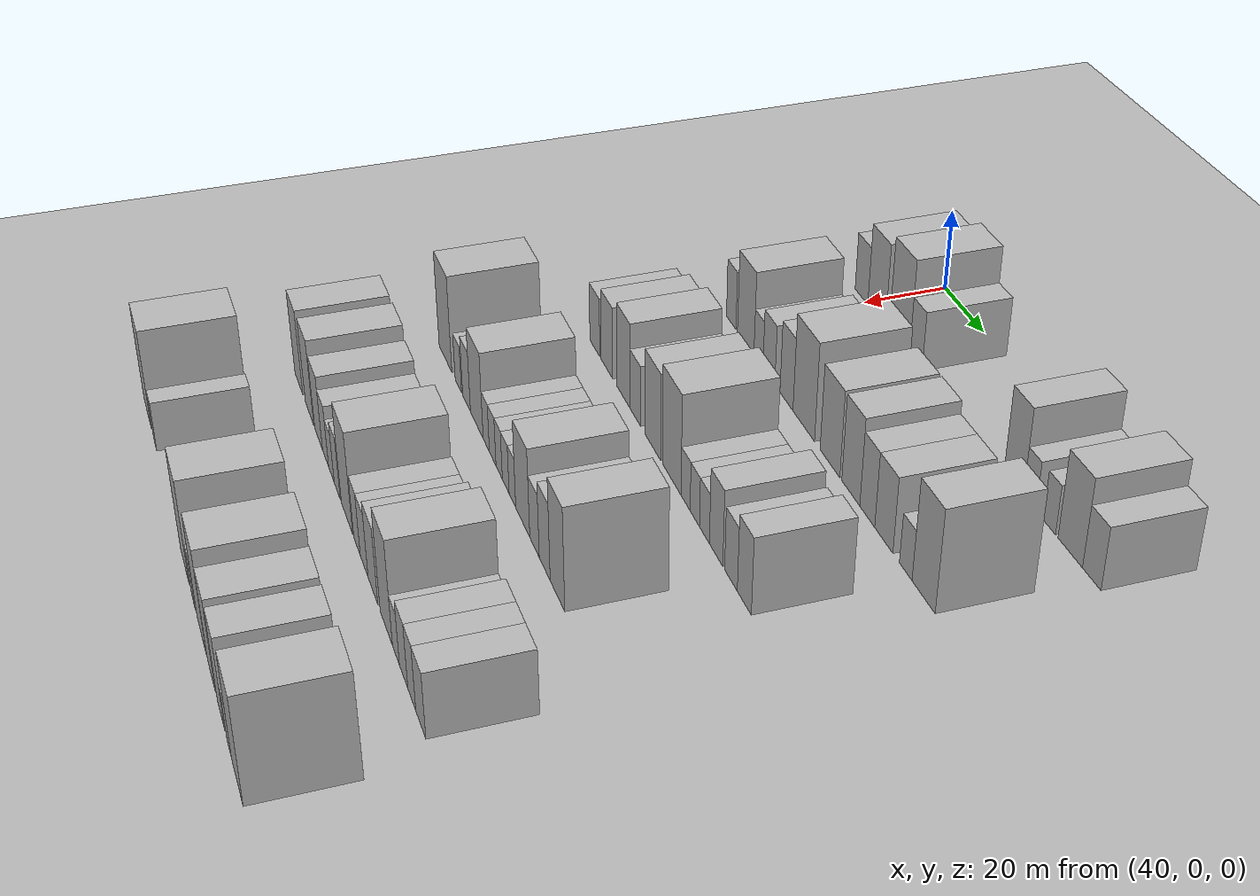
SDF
<sdf version="1.6">
 <world name="default">
  <include><name>ground_plane_1</name><uri>model://HANNAS_ground_plane</uri></include>
  <include>
   <name>ground_plane_2</name>
   <uri>model://HANNAS_ground_plane</uri>
   <pose>100 0 0  0 0 0</pose>
  </include>
  <model name="building_56">
   <static>1</static>
   <pose>50.0000 -2.0494 0 0.000000 0.000000 0.000000</pose>
   <link name="link">
    <pose>0 0 7.50 0 0 0</pose>
    <collision name="collision"><geometry><box><size>20.0000 7.2783 15.0000</size></box></geometry></collision>
    <visual name="visual">
     <cast_shadows>0</cast_shadows>
     <geometry><box><size>20.0000 7.2783 15.0000</size></box></geometry>
     <material>
      <script>
       <uri>model://HANNAS_wall/materials/scripts</uri>
       <uri>model://HANNAS_wall/materials/textures</uri>
       <name>vrc/HANNAS_wall</name>
      </script>
     </material>
    </visual>
   </link>
  </model>
  <model name="building_57">
   <static>1</static>
   <pose>50.0000 6.5511 0 0.000000 0.000000 0.000000</pose>
   <link name="link">
    <pose>0 0 10.50 0 0 0</pose>
    <collision name="collision"><geometry><box><size>20.0000 9.9227 21.0000</size></box></geometry></collision>
    <visual name="visual">
     <cast_shadows>0</cast_shadows>
     <geometry><box><size>20.0000 9.9227 21.0000</size></box></geometry>
     <material>
      <script>
       <uri>model://HANNAS_wall/materials/scripts</uri>
       <uri>model://HANNAS_wall/materials/textures</uri>
       <name>vrc/HANNAS_wall</name>
      </script>
     </material>
    </visual>
   </link>
  </model>
  <model name="building_58">
   <static>1</static>
   <pose>50.0000 18.9550 0 0.000000 0.000000 0.000000</pose>
   <link name="link">
    <pose>0 0 12.00 0 0 0</pose>
    <collision name="collision"><geometry><box><size>20.0000 10.8851 24.0000</size></box></geometry></collision>
    <visual name="visual">
     <cast_shadows>0</cast_shadows>
     <geometry><box><size>20.0000 10.8851 24.0000</size></box></geometry>
     <material>
      <script>
       <uri>model://HANNAS_wall/materials/scripts</uri>
       <uri>model://HANNAS_wall/materials/textures</uri>
       <name>vrc/HANNAS_wall</name>
      </script>
     </material>
    </visual>
   </link>
  </model>
  <model name="building_59">
   <static>1</static>
   <pose>50.0000 27.7127 0 0.000000 0.000000 0.000000</pose>
   <link name="link">
    <pose>0 0 7.50 0 0 0</pose>
    <collision name="collision"><geometry><box><size>20.0000 6.6302 15.0000</size></box></geometry></collision>
    <visual name="visual">
     <cast_shadows>0</cast_shadows>
     <geometry><box><size>20.0000 6.6302 15.0000</size></box></geometry>
     <material>
      <script>
       <uri>model://HANNAS_wall/materials/scripts</uri>
       <uri>model://HANNAS_wall/materials/textures</uri>
       <name>vrc/HANNAS_wall</name>
      </script>
     </material>
    </visual>
   </link>
  </model>
  <model name="building_60">
   <static>1</static>
   <pose>50.0000 74.7638 0 0.000000 0.000000 0.000000</pose>
   <link name="link">
    <pose>0 0 10.50 0 0 0</pose>
    <collision name="collision"><geometry><box><size>20.0000 8.4907 21.0000</size></box></geometry></collision>
    <visual name="visual">
     <cast_shadows>0</cast_shadows>
     <geometry><box><size>20.0000 8.4907 21.0000</size></box></geometry>
     <material>
      <script>
       <uri>model://HANNAS_wall/materials/scripts</uri>
       <uri>model://HANNAS_wall/materials/textures</uri>
       <name>vrc/HANNAS_wall</name>
      </script>
     </material>
    </visual>
   </link>
  </model>
  <model name="building_61">
   <static>1</static>
   <pose>50.0000 81.7111 0 0.000000 0.000000 0.000000</pose>
   <link name="link">
    <pose>0 0 6.00 0 0 0</pose>
    <collision name="collision"><geometry><box><size>20.0000 5.4040 12.0000</size></box></geometry></collision>
    <visual name="visual">
     <cast_shadows>0</cast_shadows>
     <geometry><box><size>20.0000 5.4040 12.0000</size></box></geometry>
     <material>
      <script>
       <uri>model://HANNAS_wall/materials/scripts</uri>
       <uri>model://HANNAS_wall/materials/textures</uri>
       <name>vrc/HANNAS_wall</name>
      </script>
     </material>
    </visual>
   </link>
  </model>
  <model name="building_62">
   <static>1</static>
   <pose>50.0000 90.0123 0 0.000000 0.000000 0.000000</pose>
   <link name="link">
    <pose>0 0 6.00 0 0 0</pose>
    <collision name="collision"><geometry><box><size>20.0000 5.1983 12.0000</size></box></geometry></collision>
    <visual name="visual">
     <cast_shadows>0</cast_shadows>
     <geometry><box><size>20.0000 5.1983 12.0000</size></box></geometry>
     <material>
      <script>
       <uri>model://HANNAS_wall/materials/scripts</uri>
       <uri>model://HANNAS_wall/materials/textures</uri>
       <name>vrc/HANNAS_wall</name>
      </script>
     </material>
    </visual>
   </link>
  </model>
  <model name="building_63">
   <static>1</static>
   <pose>50.0000 98.5556 0 0.000000 0.000000 0.000000</pose>
   <link name="link">
    <pose>0 0 10.50 0 0 0</pose>
    <collision name="collision"><geometry><box><size>20.0000 9.8883 21.0000</size></box></geometry></collision>
    <visual name="visual">
     <cast_shadows>0</cast_shadows>
     <geometry><box><size>20.0000 9.8883 21.0000</size></box></geometry>
     <material>
      <script>
       <uri>model://HANNAS_wall/materials/scripts</uri>
       <uri>model://HANNAS_wall/materials/textures</uri>
       <name>vrc/HANNAS_wall</name>
      </script>
     </material>
    </visual>
   </link>
  </model>
  <model name="building_64">
   <static>1</static>
   <pose>50.0000 107.1065 0 0.000000 0.000000 0.000000</pose>
   <link name="link">
    <pose>0 0 7.50 0 0 0</pose>
    <collision name="collision"><geometry><box><size>20.0000 7.2136 15.0000</size></box></geometry></collision>
    <visual name="visual">
     <cast_shadows>0</cast_shadows>
     <geometry><box><size>20.0000 7.2136 15.0000</size></box></geometry>
     <material>
      <script>
       <uri>model://HANNAS_wall/materials/scripts</uri>
       <uri>model://HANNAS_wall/materials/textures</uri>
       <name>vrc/HANNAS_wall</name>
      </script>
     </material>
    </visual>
   </link>
  </model>
  <model name="building_173">
   <static>1</static>
   <pose>82.0000 -0.5348 0 0.000000 0.000000 0.000000</pose>
   <link name="link">
    <pose>0 0 7.50 0 0 0</pose>
    <collision name="collision"><geometry><box><size>20.0000 6.0662 15.0000</size></box></geometry></collision>
    <visual name="visual">
     <cast_shadows>0</cast_shadows>
     <geometry><box><size>20.0000 6.0662 15.0000</size></box></geometry>
     <material>
      <script>
       <uri>model://HANNAS_wall/materials/scripts</uri>
       <uri>model://HANNAS_wall/materials/textures</uri>
       <name>vrc/HANNAS_wall</name>
      </script>
     </material>
    </visual>
   </link>
  </model>
  <model name="building_174">
   <static>1</static>
   <pose>82.0000 8.6319 0 0.000000 0.000000 0.000000</pose>
   <link name="link">
    <pose>0 0 10.50 0 0 0</pose>
    <collision name="collision"><geometry><box><size>20.0000 10.2672 21.0000</size></box></geometry></collision>
    <visual name="visual">
     <cast_shadows>0</cast_shadows>
     <geometry><box><size>20.0000 10.2672 21.0000</size></box></geometry>
     <material>
      <script>
       <uri>model://HANNAS_wall/materials/scripts</uri>
       <uri>model://HANNAS_wall/materials/textures</uri>
       <name>vrc/HANNAS_wall</name>
      </script>
     </material>
    </visual>
   </link>
  </model>
  <model name="building_175">
   <static>1</static>
   <pose>82.0000 16.5179 0 0.000000 0.000000 0.000000</pose>
   <link name="link">
    <pose>0 0 6.00 0 0 0</pose>
    <collision name="collision"><geometry><box><size>20.0000 5.5050 12.0000</size></box></geometry></collision>
    <visual name="visual">
     <cast_shadows>0</cast_shadows>
     <geometry><box><size>20.0000 5.5050 12.0000</size></box></geometry>
     <material>
      <script>
       <uri>model://HANNAS_wall/materials/scripts</uri>
       <uri>model://HANNAS_wall/materials/textures</uri>
       <name>vrc/HANNAS_wall</name>
      </script>
     </material>
    </visual>
   </link>
  </model>
  <model name="building_176">
   <static>1</static>
   <pose>82.0000 22.8139 0 0.000000 0.000000 0.000000</pose>
   <link name="link">
    <pose>0 0 7.50 0 0 0</pose>
    <collision name="collision"><geometry><box><size>20.0000 7.0869 15.0000</size></box></geometry></collision>
    <visual name="visual">
     <cast_shadows>0</cast_shadows>
     <geometry><box><size>20.0000 7.0869 15.0000</size></box></geometry>
     <material>
      <script>
       <uri>model://HANNAS_wall/materials/scripts</uri>
       <uri>model://HANNAS_wall/materials/textures</uri>
       <name>vrc/HANNAS_wall</name>
      </script>
     </material>
    </visual>
   </link>
  </model>
  <model name="building_177">
   <static>1</static>
   <pose>82.0000 33.0993 0 0.000000 0.000000 0.000000</pose>
   <link name="link">
    <pose>0 0 9.00 0 0 0</pose>
    <collision name="collision"><geometry><box><size>20.0000 7.4840 18.0000</size></box></geometry></collision>
    <visual name="visual">
     <cast_shadows>0</cast_shadows>
     <geometry><box><size>20.0000 7.4840 18.0000</size></box></geometry>
     <material>
      <script>
       <uri>model://HANNAS_wall/materials/scripts</uri>
       <uri>model://HANNAS_wall/materials/textures</uri>
       <name>vrc/HANNAS_wall</name>
      </script>
     </material>
    </visual>
   </link>
  </model>
  <model name="building_178">
   <static>1</static>
   <pose>82.0000 42.8319 0 0.000000 0.000000 0.000000</pose>
   <link name="link">
    <pose>0 0 12.00 0 0 0</pose>
    <collision name="collision"><geometry><box><size>20.0000 11.9812 24.0000</size></box></geometry></collision>
    <visual name="visual">
     <cast_shadows>0</cast_shadows>
     <geometry><box><size>20.0000 11.9812 24.0000</size></box></geometry>
     <material>
      <script>
       <uri>model://HANNAS_wall/materials/scripts</uri>
       <uri>model://HANNAS_wall/materials/textures</uri>
       <name>vrc/HANNAS_wall</name>
      </script>
     </material>
    </visual>
   </link>
  </model>
  <model name="building_179">
   <static>1</static>
   <pose>82.0000 57.0280 0 0.000000 0.000000 0.000000</pose>
   <link name="link">
    <pose>0 0 10.50 0 0 0</pose>
    <collision name="collision"><geometry><box><size>20.0000 10.4110 21.0000</size></box></geometry></collision>
    <visual name="visual">
     <cast_shadows>0</cast_shadows>
     <geometry><box><size>20.0000 10.4110 21.0000</size></box></geometry>
     <material>
      <script>
       <uri>model://HANNAS_wall/materials/scripts</uri>
       <uri>model://HANNAS_wall/materials/textures</uri>
       <name>vrc/HANNAS_wall</name>
      </script>
     </material>
    </visual>
   </link>
  </model>
  <model name="building_180">
   <static>1</static>
   <pose>82.0000 67.7939 0 0.000000 0.000000 0.000000</pose>
   <link name="link">
    <pose>0 0 10.50 0 0 0</pose>
    <collision name="collision"><geometry><box><size>20.0000 9.1208 21.0000</size></box></geometry></collision>
    <visual name="visual">
     <cast_shadows>0</cast_shadows>
     <geometry><box><size>20.0000 9.1208 21.0000</size></box></geometry>
     <material>
      <script>
       <uri>model://HANNAS_wall/materials/scripts</uri>
       <uri>model://HANNAS_wall/materials/textures</uri>
       <name>vrc/HANNAS_wall</name>
      </script>
     </material>
    </visual>
   </link>
  </model>
  <model name="building_181">
   <static>1</static>
   <pose>82.0000 76.0153 0 0.000000 0.000000 0.000000</pose>
   <link name="link">
    <pose>0 0 9.00 0 0 0</pose>
    <collision name="collision"><geometry><box><size>20.0000 7.3220 18.0000</size></box></geometry></collision>
    <visual name="visual">
     <cast_shadows>0</cast_shadows>
     <geometry><box><size>20.0000 7.3220 18.0000</size></box></geometry>
     <material>
      <script>
       <uri>model://HANNAS_wall/materials/scripts</uri>
       <uri>model://HANNAS_wall/materials/textures</uri>
       <name>vrc/HANNAS_wall</name>
      </script>
     </material>
    </visual>
   </link>
  </model>
  <model name="building_182">
   <static>1</static>
   <pose>82.0000 84.0067 0 0.000000 0.000000 0.000000</pose>
   <link name="link">
    <pose>0 0 9.00 0 0 0</pose>
    <collision name="collision"><geometry><box><size>20.0000 8.6608 18.0000</size></box></geometry></collision>
    <visual name="visual">
     <cast_shadows>0</cast_shadows>
     <geometry><box><size>20.0000 8.6608 18.0000</size></box></geometry>
     <material>
      <script>
       <uri>model://HANNAS_wall/materials/scripts</uri>
       <uri>model://HANNAS_wall/materials/textures</uri>
       <name>vrc/HANNAS_wall</name>
      </script>
     </material>
    </visual>
   </link>
  </model>
  <model name="building_183">
   <static>1</static>
   <pose>82.0000 94.2302 0 0.000000 0.000000 0.000000</pose>
   <link name="link">
    <pose>0 0 6.00 0 0 0</pose>
    <collision name="collision"><geometry><box><size>20.0000 5.7862 12.0000</size></box></geometry></collision>
    <visual name="visual">
     <cast_shadows>0</cast_shadows>
     <geometry><box><size>20.0000 5.7862 12.0000</size></box></geometry>
     <material>
      <script>
       <uri>model://HANNAS_wall/materials/scripts</uri>
       <uri>model://HANNAS_wall/materials/textures</uri>
       <name>vrc/HANNAS_wall</name>
      </script>
     </material>
    </visual>
   </link>
  </model>
  <model name="building_184">
   <static>1</static>
   <pose>82.0000 102.2460 0 0.000000 0.000000 0.000000</pose>
   <link name="link">
    <pose>0 0 12.00 0 0 0</pose>
    <collision name="collision"><geometry><box><size>20.0000 10.2453 24.0000</size></box></geometry></collision>
    <visual name="visual">
     <cast_shadows>0</cast_shadows>
     <geometry><box><size>20.0000 10.2453 24.0000</size></box></geometry>
     <material>
      <script>
       <uri>model://HANNAS_wall/materials/scripts</uri>
       <uri>model://HANNAS_wall/materials/textures</uri>
       <name>vrc/HANNAS_wall</name>
      </script>
     </material>
    </visual>
   </link>
  </model>
  <model name="building_300">
   <static>1</static>
   <pose>114.0000 0.4179 0 0.000000 0.000000 0.000000</pose>
   <link name="link">
    <pose>0 0 7.50 0 0 0</pose>
    <collision name="collision"><geometry><box><size>20.0000 7.3293 15.0000</size></box></geometry></collision>
    <visual name="visual">
     <cast_shadows>0</cast_shadows>
     <geometry><box><size>20.0000 7.3293 15.0000</size></box></geometry>
     <material>
      <script>
       <uri>model://HANNAS_wall/materials/scripts</uri>
       <uri>model://HANNAS_wall/materials/textures</uri>
       <name>vrc/HANNAS_wall</name>
      </script>
     </material>
    </visual>
   </link>
  </model>
  <model name="building_301">
   <static>1</static>
   <pose>114.0000 9.2279 0 0.000000 0.000000 0.000000</pose>
   <link name="link">
    <pose>0 0 9.00 0 0 0</pose>
    <collision name="collision"><geometry><box><size>20.0000 8.2907 18.0000</size></box></geometry></collision>
    <visual name="visual">
     <cast_shadows>0</cast_shadows>
     <geometry><box><size>20.0000 8.2907 18.0000</size></box></geometry>
     <material>
      <script>
       <uri>model://HANNAS_wall/materials/scripts</uri>
       <uri>model://HANNAS_wall/materials/textures</uri>
       <name>vrc/HANNAS_wall</name>
      </script>
     </material>
    </visual>
   </link>
  </model>
  <model name="building_302">
   <static>1</static>
   <pose>114.0000 20.9055 0 0.000000 0.000000 0.000000</pose>
   <link name="link">
    <pose>0 0 10.50 0 0 0</pose>
    <collision name="collision"><geometry><box><size>20.0000 9.0646 21.0000</size></box></geometry></collision>
    <visual name="visual">
     <cast_shadows>0</cast_shadows>
     <geometry><box><size>20.0000 9.0646 21.0000</size></box></geometry>
     <material>
      <script>
       <uri>model://HANNAS_wall/materials/scripts</uri>
       <uri>model://HANNAS_wall/materials/textures</uri>
       <name>vrc/HANNAS_wall</name>
      </script>
     </material>
    </visual>
   </link>
  </model>
  <model name="building_303">
   <static>1</static>
   <pose>114.0000 28.9575 0 0.000000 0.000000 0.000000</pose>
   <link name="link">
    <pose>0 0 7.50 0 0 0</pose>
    <collision name="collision"><geometry><box><size>20.0000 7.0394 15.0000</size></box></geometry></collision>
    <visual name="visual">
     <cast_shadows>0</cast_shadows>
     <geometry><box><size>20.0000 7.0394 15.0000</size></box></geometry>
     <material>
      <script>
       <uri>model://HANNAS_wall/materials/scripts</uri>
       <uri>model://HANNAS_wall/materials/textures</uri>
       <name>vrc/HANNAS_wall</name>
      </script>
     </material>
    </visual>
   </link>
  </model>
  <model name="building_304">
   <static>1</static>
   <pose>114.0000 40.5156 0 0.000000 0.000000 0.000000</pose>
   <link name="link">
    <pose>0 0 10.50 0 0 0</pose>
    <collision name="collision"><geometry><box><size>20.0000 10.0767 21.0000</size></box></geometry></collision>
    <visual name="visual">
     <cast_shadows>0</cast_shadows>
     <geometry><box><size>20.0000 10.0767 21.0000</size></box></geometry>
     <material>
      <script>
       <uri>model://HANNAS_wall/materials/scripts</uri>
       <uri>model://HANNAS_wall/materials/textures</uri>
       <name>vrc/HANNAS_wall</name>
      </script>
     </material>
    </visual>
   </link>
  </model>
  <model name="building_305">
   <static>1</static>
   <pose>114.0000 52.3135 0 0.000000 0.000000 0.000000</pose>
   <link name="link">
    <pose>0 0 12.00 0 0 0</pose>
    <collision name="collision"><geometry><box><size>20.0000 11.5190 24.0000</size></box></geometry></collision>
    <visual name="visual">
     <cast_shadows>0</cast_shadows>
     <geometry><box><size>20.0000 11.5190 24.0000</size></box></geometry>
     <material>
      <script>
       <uri>model://HANNAS_wall/materials/scripts</uri>
       <uri>model://HANNAS_wall/materials/textures</uri>
       <name>vrc/HANNAS_wall</name>
      </script>
     </material>
    </visual>
   </link>
  </model>
  <model name="building_306">
   <static>1</static>
   <pose>114.0000 60.8101 0 0.000000 0.000000 0.000000</pose>
   <link name="link">
    <pose>0 0 6.00 0 0 0</pose>
    <collision name="collision"><geometry><box><size>20.0000 5.4741 12.0000</size></box></geometry></collision>
    <visual name="visual">
     <cast_shadows>0</cast_shadows>
     <geometry><box><size>20.0000 5.4741 12.0000</size></box></geometry>
     <material>
      <script>
       <uri>model://HANNAS_wall/materials/scripts</uri>
       <uri>model://HANNAS_wall/materials/textures</uri>
       <name>vrc/HANNAS_wall</name>
      </script>
     </material>
    </visual>
   </link>
  </model>
  <model name="building_307">
   <static>1</static>
   <pose>114.0000 66.2690 0 0.000000 0.000000 0.000000</pose>
   <link name="link">
    <pose>0 0 6.00 0 0 0</pose>
    <collision name="collision"><geometry><box><size>20.0000 5.4438 12.0000</size></box></geometry></collision>
    <visual name="visual">
     <cast_shadows>0</cast_shadows>
     <geometry><box><size>20.0000 5.4438 12.0000</size></box></geometry>
     <material>
      <script>
       <uri>model://HANNAS_wall/materials/scripts</uri>
       <uri>model://HANNAS_wall/materials/textures</uri>
       <name>vrc/HANNAS_wall</name>
      </script>
     </material>
    </visual>
   </link>
  </model>
  <model name="building_308">
   <static>1</static>
   <pose>114.0000 71.8307 0 0.000000 0.000000 0.000000</pose>
   <link name="link">
    <pose>0 0 6.00 0 0 0</pose>
    <collision name="collision"><geometry><box><size>20.0000 5.6796 12.0000</size></box></geometry></collision>
    <visual name="visual">
     <cast_shadows>0</cast_shadows>
     <geometry><box><size>20.0000 5.6796 12.0000</size></box></geometry>
     <material>
      <script>
       <uri>model://HANNAS_wall/materials/scripts</uri>
       <uri>model://HANNAS_wall/materials/textures</uri>
       <name>vrc/HANNAS_wall</name>
      </script>
     </material>
    </visual>
   </link>
  </model>
  <model name="building_309">
   <static>1</static>
   <pose>114.0000 78.3942 0 0.000000 0.000000 0.000000</pose>
   <link name="link">
    <pose>0 0 9.00 0 0 0</pose>
    <collision name="collision"><geometry><box><size>20.0000 7.4474 18.0000</size></box></geometry></collision>
    <visual name="visual">
     <cast_shadows>0</cast_shadows>
     <geometry><box><size>20.0000 7.4474 18.0000</size></box></geometry>
     <material>
      <script>
       <uri>model://HANNAS_wall/materials/scripts</uri>
       <uri>model://HANNAS_wall/materials/textures</uri>
       <name>vrc/HANNAS_wall</name>
      </script>
     </material>
    </visual>
   </link>
  </model>
  <model name="building_310">
   <static>1</static>
   <pose>114.0000 86.5548 0 0.000000 0.000000 0.000000</pose>
   <link name="link">
    <pose>0 0 7.50 0 0 0</pose>
    <collision name="collision"><geometry><box><size>20.0000 6.8738 15.0000</size></box></geometry></collision>
    <visual name="visual">
     <cast_shadows>0</cast_shadows>
     <geometry><box><size>20.0000 6.8738 15.0000</size></box></geometry>
     <material>
      <script>
       <uri>model://HANNAS_wall/materials/scripts</uri>
       <uri>model://HANNAS_wall/materials/textures</uri>
       <name>vrc/HANNAS_wall</name>
      </script>
     </material>
    </visual>
   </link>
  </model>
  <model name="building_311">
   <static>1</static>
   <pose>114.0000 93.6658 0 0.000000 0.000000 0.000000</pose>
   <link name="link">
    <pose>0 0 9.00 0 0 0</pose>
    <collision name="collision"><geometry><box><size>20.0000 7.3481 18.0000</size></box></geometry></collision>
    <visual name="visual">
     <cast_shadows>0</cast_shadows>
     <geometry><box><size>20.0000 7.3481 18.0000</size></box></geometry>
     <material>
      <script>
       <uri>model://HANNAS_wall/materials/scripts</uri>
       <uri>model://HANNAS_wall/materials/textures</uri>
       <name>vrc/HANNAS_wall</name>
      </script>
     </material>
    </visual>
   </link>
  </model>
  <model name="building_404">
   <static>1</static>
   <pose>146.0000 -5.5070 0 0.000000 0.000000 0.000000</pose>
   <link name="link">
    <pose>0 0 12.00 0 0 0</pose>
    <collision name="collision"><geometry><box><size>20.0000 11.4725 24.0000</size></box></geometry></collision>
    <visual name="visual">
     <cast_shadows>0</cast_shadows>
     <geometry><box><size>20.0000 11.4725 24.0000</size></box></geometry>
     <material>
      <script>
       <uri>model://HANNAS_wall/materials/scripts</uri>
       <uri>model://HANNAS_wall/materials/textures</uri>
       <name>vrc/HANNAS_wall</name>
      </script>
     </material>
    </visual>
   </link>
  </model>
  <model name="building_405">
   <static>1</static>
   <pose>146.0000 6.0010 0 0.000000 0.000000 0.000000</pose>
   <link name="link">
    <pose>0 0 6.00 0 0 0</pose>
    <collision name="collision"><geometry><box><size>20.0000 5.5435 12.0000</size></box></geometry></collision>
    <visual name="visual">
     <cast_shadows>0</cast_shadows>
     <geometry><box><size>20.0000 5.5435 12.0000</size></box></geometry>
     <material>
      <script>
       <uri>model://HANNAS_wall/materials/scripts</uri>
       <uri>model://HANNAS_wall/materials/textures</uri>
       <name>vrc/HANNAS_wall</name>
      </script>
     </material>
    </visual>
   </link>
  </model>
  <model name="building_406">
   <static>1</static>
   <pose>146.0000 13.0689 0 0.000000 0.000000 0.000000</pose>
   <link name="link">
    <pose>0 0 7.50 0 0 0</pose>
    <collision name="collision"><geometry><box><size>20.0000 6.5924 15.0000</size></box></geometry></collision>
    <visual name="visual">
     <cast_shadows>0</cast_shadows>
     <geometry><box><size>20.0000 6.5924 15.0000</size></box></geometry>
     <material>
      <script>
       <uri>model://HANNAS_wall/materials/scripts</uri>
       <uri>model://HANNAS_wall/materials/textures</uri>
       <name>vrc/HANNAS_wall</name>
      </script>
     </material>
    </visual>
   </link>
  </model>
  <model name="building_407">
   <static>1</static>
   <pose>146.0000 21.6121 0 0.000000 0.000000 0.000000</pose>
   <link name="link">
    <pose>0 0 10.50 0 0 0</pose>
    <collision name="collision"><geometry><box><size>20.0000 10.4939 21.0000</size></box></geometry></collision>
    <visual name="visual">
     <cast_shadows>0</cast_shadows>
     <geometry><box><size>20.0000 10.4939 21.0000</size></box></geometry>
     <material>
      <script>
       <uri>model://HANNAS_wall/materials/scripts</uri>
       <uri>model://HANNAS_wall/materials/textures</uri>
       <name>vrc/HANNAS_wall</name>
      </script>
     </material>
    </visual>
   </link>
  </model>
  <model name="building_408">
   <static>1</static>
   <pose>146.0000 29.3572 0 0.000000 0.000000 0.000000</pose>
   <link name="link">
    <pose>0 0 6.00 0 0 0</pose>
    <collision name="collision"><geometry><box><size>20.0000 4.9962 12.0000</size></box></geometry></collision>
    <visual name="visual">
     <cast_shadows>0</cast_shadows>
     <geometry><box><size>20.0000 4.9962 12.0000</size></box></geometry>
     <material>
      <script>
       <uri>model://HANNAS_wall/materials/scripts</uri>
       <uri>model://HANNAS_wall/materials/textures</uri>
       <name>vrc/HANNAS_wall</name>
      </script>
     </material>
    </visual>
   </link>
  </model>
  <model name="building_409">
   <static>1</static>
   <pose>146.0000 34.4509 0 0.000000 0.000000 0.000000</pose>
   <link name="link">
    <pose>0 0 6.00 0 0 0</pose>
    <collision name="collision"><geometry><box><size>20.0000 5.1911 12.0000</size></box></geometry></collision>
    <visual name="visual">
     <cast_shadows>0</cast_shadows>
     <geometry><box><size>20.0000 5.1911 12.0000</size></box></geometry>
     <material>
      <script>
       <uri>model://HANNAS_wall/materials/scripts</uri>
       <uri>model://HANNAS_wall/materials/textures</uri>
       <name>vrc/HANNAS_wall</name>
      </script>
     </material>
    </visual>
   </link>
  </model>
  <model name="building_410">
   <static>1</static>
   <pose>146.0000 39.5081 0 0.000000 0.000000 0.000000</pose>
   <link name="link">
    <pose>0 0 6.00 0 0 0</pose>
    <collision name="collision"><geometry><box><size>20.0000 4.9233 12.0000</size></box></geometry></collision>
    <visual name="visual">
     <cast_shadows>0</cast_shadows>
     <geometry><box><size>20.0000 4.9233 12.0000</size></box></geometry>
     <material>
      <script>
       <uri>model://HANNAS_wall/materials/scripts</uri>
       <uri>model://HANNAS_wall/materials/textures</uri>
       <name>vrc/HANNAS_wall</name>
      </script>
     </material>
    </visual>
   </link>
  </model>
  <model name="building_411">
   <static>1</static>
   <pose>146.0000 44.5325 0 0.000000 0.000000 0.000000</pose>
   <link name="link">
    <pose>0 0 6.00 0 0 0</pose>
    <collision name="collision"><geometry><box><size>20.0000 5.1254 12.0000</size></box></geometry></collision>
    <visual name="visual">
     <cast_shadows>0</cast_shadows>
     <geometry><box><size>20.0000 5.1254 12.0000</size></box></geometry>
     <material>
      <script>
       <uri>model://HANNAS_wall/materials/scripts</uri>
       <uri>model://HANNAS_wall/materials/textures</uri>
       <name>vrc/HANNAS_wall</name>
      </script>
     </material>
    </visual>
   </link>
  </model>
  <model name="building_412">
   <static>1</static>
   <pose>146.0000 49.5551 0 0.000000 0.000000 0.000000</pose>
   <link name="link">
    <pose>0 0 6.00 0 0 0</pose>
    <collision name="collision"><geometry><box><size>20.0000 4.9199 12.0000</size></box></geometry></collision>
    <visual name="visual">
     <cast_shadows>0</cast_shadows>
     <geometry><box><size>20.0000 4.9199 12.0000</size></box></geometry>
     <material>
      <script>
       <uri>model://HANNAS_wall/materials/scripts</uri>
       <uri>model://HANNAS_wall/materials/textures</uri>
       <name>vrc/HANNAS_wall</name>
      </script>
     </material>
    </visual>
   </link>
  </model>
  <model name="building_413">
   <static>1</static>
   <pose>146.0000 57.0965 0 0.000000 0.000000 0.000000</pose>
   <link name="link">
    <pose>0 0 10.50 0 0 0</pose>
    <collision name="collision"><geometry><box><size>20.0000 10.1629 21.0000</size></box></geometry></collision>
    <visual name="visual">
     <cast_shadows>0</cast_shadows>
     <geometry><box><size>20.0000 10.1629 21.0000</size></box></geometry>
     <material>
      <script>
       <uri>model://HANNAS_wall/materials/scripts</uri>
       <uri>model://HANNAS_wall/materials/textures</uri>
       <name>vrc/HANNAS_wall</name>
      </script>
     </material>
    </visual>
   </link>
  </model>
  <model name="building_414">
   <static>1</static>
   <pose>146.0000 65.4911 0 0.000000 0.000000 0.000000</pose>
   <link name="link">
    <pose>0 0 7.50 0 0 0</pose>
    <collision name="collision"><geometry><box><size>20.0000 6.6264 15.0000</size></box></geometry></collision>
    <visual name="visual">
     <cast_shadows>0</cast_shadows>
     <geometry><box><size>20.0000 6.6264 15.0000</size></box></geometry>
     <material>
      <script>
       <uri>model://HANNAS_wall/materials/scripts</uri>
       <uri>model://HANNAS_wall/materials/textures</uri>
       <name>vrc/HANNAS_wall</name>
      </script>
     </material>
    </visual>
   </link>
  </model>
  <model name="building_415">
   <static>1</static>
   <pose>146.0000 72.5198 0 0.000000 0.000000 0.000000</pose>
   <link name="link">
    <pose>0 0 9.00 0 0 0</pose>
    <collision name="collision"><geometry><box><size>20.0000 7.4310 18.0000</size></box></geometry></collision>
    <visual name="visual">
     <cast_shadows>0</cast_shadows>
     <geometry><box><size>20.0000 7.4310 18.0000</size></box></geometry>
     <material>
      <script>
       <uri>model://HANNAS_wall/materials/scripts</uri>
       <uri>model://HANNAS_wall/materials/textures</uri>
       <name>vrc/HANNAS_wall</name>
      </script>
     </material>
    </visual>
   </link>
  </model>
  <model name="building_416">
   <static>1</static>
   <pose>146.0000 81.0404 0 0.000000 0.000000 0.000000</pose>
   <link name="link">
    <pose>0 0 12.00 0 0 0</pose>
    <collision name="collision"><geometry><box><size>20.0000 9.6101 24.0000</size></box></geometry></collision>
    <visual name="visual">
     <cast_shadows>0</cast_shadows>
     <geometry><box><size>20.0000 9.6101 24.0000</size></box></geometry>
     <material>
      <script>
       <uri>model://HANNAS_wall/materials/scripts</uri>
       <uri>model://HANNAS_wall/materials/textures</uri>
       <name>vrc/HANNAS_wall</name>
      </script>
     </material>
    </visual>
   </link>
  </model>
  <model name="building_523">
   <static>1</static>
   <pose>178.0000 -5.4375 0 0.000000 0.000000 0.000000</pose>
   <link name="link">
    <pose>0 0 10.50 0 0 0</pose>
    <collision name="collision"><geometry><box><size>20.0000 9.1061 21.0000</size></box></geometry></collision>
    <visual name="visual">
     <cast_shadows>0</cast_shadows>
     <geometry><box><size>20.0000 9.1061 21.0000</size></box></geometry>
     <material>
      <script>
       <uri>model://HANNAS_wall/materials/scripts</uri>
       <uri>model://HANNAS_wall/materials/textures</uri>
       <name>vrc/HANNAS_wall</name>
      </script>
     </material>
    </visual>
   </link>
  </model>
  <model name="building_524">
   <static>1</static>
   <pose>178.0000 6.7835 0 0.000000 0.000000 0.000000</pose>
   <link name="link">
    <pose>0 0 10.50 0 0 0</pose>
    <collision name="collision"><geometry><box><size>20.0000 9.3358 21.0000</size></box></geometry></collision>
    <visual name="visual">
     <cast_shadows>0</cast_shadows>
     <geometry><box><size>20.0000 9.3358 21.0000</size></box></geometry>
     <material>
      <script>
       <uri>model://HANNAS_wall/materials/scripts</uri>
       <uri>model://HANNAS_wall/materials/textures</uri>
       <name>vrc/HANNAS_wall</name>
      </script>
     </material>
    </visual>
   </link>
  </model>
  <model name="building_525">
   <static>1</static>
   <pose>178.0000 16.5720 0 0.000000 0.000000 0.000000</pose>
   <link name="link">
    <pose>0 0 9.00 0 0 0</pose>
    <collision name="collision"><geometry><box><size>20.0000 8.2413 18.0000</size></box></geometry></collision>
    <visual name="visual">
     <cast_shadows>0</cast_shadows>
     <geometry><box><size>20.0000 8.2413 18.0000</size></box></geometry>
     <material>
      <script>
       <uri>model://HANNAS_wall/materials/scripts</uri>
       <uri>model://HANNAS_wall/materials/textures</uri>
       <name>vrc/HANNAS_wall</name>
      </script>
     </material>
    </visual>
   </link>
  </model>
  <model name="building_526">
   <static>1</static>
   <pose>178.0000 23.8976 0 0.000000 0.000000 0.000000</pose>
   <link name="link">
    <pose>0 0 7.50 0 0 0</pose>
    <collision name="collision"><geometry><box><size>20.0000 6.4099 15.0000</size></box></geometry></collision>
    <visual name="visual">
     <cast_shadows>0</cast_shadows>
     <geometry><box><size>20.0000 6.4099 15.0000</size></box></geometry>
     <material>
      <script>
       <uri>model://HANNAS_wall/materials/scripts</uri>
       <uri>model://HANNAS_wall/materials/textures</uri>
       <name>vrc/HANNAS_wall</name>
      </script>
     </material>
    </visual>
   </link>
  </model>
  <model name="building_527">
   <static>1</static>
   <pose>178.0000 29.9321 0 0.000000 0.000000 0.000000</pose>
   <link name="link">
    <pose>0 0 6.00 0 0 0</pose>
    <collision name="collision"><geometry><box><size>20.0000 5.6591 12.0000</size></box></geometry></collision>
    <visual name="visual">
     <cast_shadows>0</cast_shadows>
     <geometry><box><size>20.0000 5.6591 12.0000</size></box></geometry>
     <material>
      <script>
       <uri>model://HANNAS_wall/materials/scripts</uri>
       <uri>model://HANNAS_wall/materials/textures</uri>
       <name>vrc/HANNAS_wall</name>
      </script>
     </material>
    </visual>
   </link>
  </model>
  <model name="building_528">
   <static>1</static>
   <pose>178.0000 35.7965 0 0.000000 0.000000 0.000000</pose>
   <link name="link">
    <pose>0 0 7.50 0 0 0</pose>
    <collision name="collision"><geometry><box><size>20.0000 6.0698 15.0000</size></box></geometry></collision>
    <visual name="visual">
     <cast_shadows>0</cast_shadows>
     <geometry><box><size>20.0000 6.0698 15.0000</size></box></geometry>
     <material>
      <script>
       <uri>model://HANNAS_wall/materials/scripts</uri>
       <uri>model://HANNAS_wall/materials/textures</uri>
       <name>vrc/HANNAS_wall</name>
      </script>
     </material>
    </visual>
   </link>
  </model>
  <model name="building_529">
   <static>1</static>
   <pose>178.0000 45.2815 0 0.000000 0.000000 0.000000</pose>
   <link name="link">
    <pose>0 0 12.00 0 0 0</pose>
    <collision name="collision"><geometry><box><size>20.0000 10.9001 24.0000</size></box></geometry></collision>
    <visual name="visual">
     <cast_shadows>0</cast_shadows>
     <geometry><box><size>20.0000 10.9001 24.0000</size></box></geometry>
     <material>
      <script>
       <uri>model://HANNAS_wall/materials/scripts</uri>
       <uri>model://HANNAS_wall/materials/textures</uri>
       <name>vrc/HANNAS_wall</name>
      </script>
     </material>
    </visual>
   </link>
  </model>
  <model name="building_530">
   <static>1</static>
   <pose>178.0000 54.7600 0 0.000000 0.000000 0.000000</pose>
   <link name="link">
    <pose>0 0 7.50 0 0 0</pose>
    <collision name="collision"><geometry><box><size>20.0000 6.0569 15.0000</size></box></geometry></collision>
    <visual name="visual">
     <cast_shadows>0</cast_shadows>
     <geometry><box><size>20.0000 6.0569 15.0000</size></box></geometry>
     <material>
      <script>
       <uri>model://HANNAS_wall/materials/scripts</uri>
       <uri>model://HANNAS_wall/materials/textures</uri>
       <name>vrc/HANNAS_wall</name>
      </script>
     </material>
    </visual>
   </link>
  </model>
  <model name="building_531">
   <static>1</static>
   <pose>178.0000 61.2996 0 0.000000 0.000000 0.000000</pose>
   <link name="link">
    <pose>0 0 7.50 0 0 0</pose>
    <collision name="collision"><geometry><box><size>20.0000 7.0223 15.0000</size></box></geometry></collision>
    <visual name="visual">
     <cast_shadows>0</cast_shadows>
     <geometry><box><size>20.0000 7.0223 15.0000</size></box></geometry>
     <material>
      <script>
       <uri>model://HANNAS_wall/materials/scripts</uri>
       <uri>model://HANNAS_wall/materials/textures</uri>
       <name>vrc/HANNAS_wall</name>
      </script>
     </material>
    </visual>
   </link>
  </model>
  <model name="building_532">
   <static>1</static>
   <pose>178.0000 69.0701 0 0.000000 0.000000 0.000000</pose>
   <link name="link">
    <pose>0 0 9.00 0 0 0</pose>
    <collision name="collision"><geometry><box><size>20.0000 8.5187 18.0000</size></box></geometry></collision>
    <visual name="visual">
     <cast_shadows>0</cast_shadows>
     <geometry><box><size>20.0000 8.5187 18.0000</size></box></geometry>
     <material>
      <script>
       <uri>model://HANNAS_wall/materials/scripts</uri>
       <uri>model://HANNAS_wall/materials/textures</uri>
       <name>vrc/HANNAS_wall</name>
      </script>
     </material>
    </visual>
   </link>
  </model>
  <model name="building_533">
   <static>1</static>
   <pose>178.0000 80.4498 0 0.000000 0.000000 0.000000</pose>
   <link name="link">
    <pose>0 0 12.00 0 0 0</pose>
    <collision name="collision"><geometry><box><size>20.0000 10.2407 24.0000</size></box></geometry></collision>
    <visual name="visual">
     <cast_shadows>0</cast_shadows>
     <geometry><box><size>20.0000 10.2407 24.0000</size></box></geometry>
     <material>
      <script>
       <uri>model://HANNAS_wall/materials/scripts</uri>
       <uri>model://HANNAS_wall/materials/textures</uri>
       <name>vrc/HANNAS_wall</name>
      </script>
     </material>
    </visual>
   </link>
  </model>
  <model name="building_534">
   <static>1</static>
   <pose>178.0000 88.3648 0 0.000000 0.000000 0.000000</pose>
   <link name="link">
    <pose>0 0 6.00 0 0 0</pose>
    <collision name="collision"><geometry><box><size>20.0000 5.5892 12.0000</size></box></geometry></collision>
    <visual name="visual">
     <cast_shadows>0</cast_shadows>
     <geometry><box><size>20.0000 5.5892 12.0000</size></box></geometry>
     <material>
      <script>
       <uri>model://HANNAS_wall/materials/scripts</uri>
       <uri>model://HANNAS_wall/materials/textures</uri>
       <name>vrc/HANNAS_wall</name>
      </script>
     </material>
    </visual>
   </link>
  </model>
  <model name="building_535">
   <static>1</static>
   <pose>178.0000 94.4922 0 0.000000 0.000000 0.000000</pose>
   <link name="link">
    <pose>0 0 7.50 0 0 0</pose>
    <collision name="collision"><geometry><box><size>20.0000 6.6656 15.0000</size></box></geometry></collision>
    <visual name="visual">
     <cast_shadows>0</cast_shadows>
     <geometry><box><size>20.0000 6.6656 15.0000</size></box></geometry>
     <material>
      <script>
       <uri>model://HANNAS_wall/materials/scripts</uri>
       <uri>model://HANNAS_wall/materials/textures</uri>
       <name>vrc/HANNAS_wall</name>
      </script>
     </material>
    </visual>
   </link>
  </model>
  <model name="building_536">
   <static>1</static>
   <pose>178.0000 100.8727 0 0.000000 0.000000 0.000000</pose>
   <link name="link">
    <pose>0 0 7.50 0 0 0</pose>
    <collision name="collision"><geometry><box><size>20.0000 6.0956 15.0000</size></box></geometry></collision>
    <visual name="visual">
     <cast_shadows>0</cast_shadows>
     <geometry><box><size>20.0000 6.0956 15.0000</size></box></geometry>
     <material>
      <script>
       <uri>model://HANNAS_wall/materials/scripts</uri>
       <uri>model://HANNAS_wall/materials/textures</uri>
       <name>vrc/HANNAS_wall</name>
      </script>
     </material>
    </visual>
   </link>
  </model>
  <model name="building_537">
   <static>1</static>
   <pose>178.0000 107.6396 0 0.000000 0.000000 0.000000</pose>
   <link name="link">
    <pose>0 0 7.50 0 0 0</pose>
    <collision name="collision"><geometry><box><size>20.0000 7.4382 15.0000</size></box></geometry></collision>
    <visual name="visual">
     <cast_shadows>0</cast_shadows>
     <geometry><box><size>20.0000 7.4382 15.0000</size></box></geometry>
     <material>
      <script>
       <uri>model://HANNAS_wall/materials/scripts</uri>
       <uri>model://HANNAS_wall/materials/textures</uri>
       <name>vrc/HANNAS_wall</name>
      </script>
     </material>
    </visual>
   </link>
  </model>
  <model name="building_643">
   <static>1</static>
   <pose>210.0000 -3.5870 0 0.000000 0.000000 0.000000</pose>
   <link name="link">
    <pose>0 0 12.00 0 0 0</pose>
    <collision name="collision"><geometry><box><size>20.0000 11.9549 24.0000</size></box></geometry></collision>
    <visual name="visual">
     <cast_shadows>0</cast_shadows>
     <geometry><box><size>20.0000 11.9549 24.0000</size></box></geometry>
     <material>
      <script>
       <uri>model://HANNAS_wall/materials/scripts</uri>
       <uri>model://HANNAS_wall/materials/textures</uri>
       <name>vrc/HANNAS_wall</name>
      </script>
     </material>
    </visual>
   </link>
  </model>
  <model name="building_644">
   <static>1</static>
   <pose>210.0000 7.9742 0 0.000000 0.000000 0.000000</pose>
   <link name="link">
    <pose>0 0 6.00 0 0 0</pose>
    <collision name="collision"><geometry><box><size>20.0000 5.1676 12.0000</size></box></geometry></collision>
    <visual name="visual">
     <cast_shadows>0</cast_shadows>
     <geometry><box><size>20.0000 5.1676 12.0000</size></box></geometry>
     <material>
      <script>
       <uri>model://HANNAS_wall/materials/scripts</uri>
       <uri>model://HANNAS_wall/materials/textures</uri>
       <name>vrc/HANNAS_wall</name>
      </script>
     </material>
    </visual>
   </link>
  </model>
  <model name="building_645">
   <static>1</static>
   <pose>210.0000 50.8031 0 0.000000 0.000000 0.000000</pose>
   <link name="link">
    <pose>0 0 12.00 0 0 0</pose>
    <collision name="collision"><geometry><box><size>20.0000 11.4967 24.0000</size></box></geometry></collision>
    <visual name="visual">
     <cast_shadows>0</cast_shadows>
     <geometry><box><size>20.0000 11.4967 24.0000</size></box></geometry>
     <material>
      <script>
       <uri>model://HANNAS_wall/materials/scripts</uri>
       <uri>model://HANNAS_wall/materials/textures</uri>
       <name>vrc/HANNAS_wall</name>
      </script>
     </material>
    </visual>
   </link>
  </model>
  <model name="building_646">
   <static>1</static>
   <pose>210.0000 62.0163 0 0.000000 0.000000 0.000000</pose>
   <link name="link">
    <pose>0 0 6.00 0 0 0</pose>
    <collision name="collision"><geometry><box><size>20.0000 4.9295 12.0000</size></box></geometry></collision>
    <visual name="visual">
     <cast_shadows>0</cast_shadows>
     <geometry><box><size>20.0000 4.9295 12.0000</size></box></geometry>
     <material>
      <script>
       <uri>model://HANNAS_wall/materials/scripts</uri>
       <uri>model://HANNAS_wall/materials/textures</uri>
       <name>vrc/HANNAS_wall</name>
      </script>
     </material>
    </visual>
   </link>
  </model>
  <model name="building_647">
   <static>1</static>
   <pose>210.0000 72.2965 0 0.000000 0.000000 0.000000</pose>
   <link name="link">
    <pose>0 0 12.00 0 0 0</pose>
    <collision name="collision"><geometry><box><size>20.0000 11.6309 24.0000</size></box></geometry></collision>
    <visual name="visual">
     <cast_shadows>0</cast_shadows>
     <geometry><box><size>20.0000 11.6309 24.0000</size></box></geometry>
     <material>
      <script>
       <uri>model://HANNAS_wall/materials/scripts</uri>
       <uri>model://HANNAS_wall/materials/textures</uri>
       <name>vrc/HANNAS_wall</name>
      </script>
     </material>
    </visual>
   </link>
  </model>
  <model name="building_648">
   <static>1</static>
   <pose>210.0000 83.7754 0 0.000000 0.000000 0.000000</pose>
   <link name="link">
    <pose>0 0 10.50 0 0 0</pose>
    <collision name="collision"><geometry><box><size>20.0000 9.3269 21.0000</size></box></geometry></collision>
    <visual name="visual">
     <cast_shadows>0</cast_shadows>
     <geometry><box><size>20.0000 9.3269 21.0000</size></box></geometry>
     <material>
      <script>
       <uri>model://HANNAS_wall/materials/scripts</uri>
       <uri>model://HANNAS_wall/materials/textures</uri>
       <name>vrc/HANNAS_wall</name>
      </script>
     </material>
    </visual>
   </link>
  </model>
  <model name="building_649">
   <static>1</static>
   <pose>210.0000 94.7061 0 0.000000 0.000000 0.000000</pose>
   <link name="link">
    <pose>0 0 10.50 0 0 0</pose>
    <collision name="collision"><geometry><box><size>20.0000 8.5346 21.0000</size></box></geometry></collision>
    <visual name="visual">
     <cast_shadows>0</cast_shadows>
     <geometry><box><size>20.0000 8.5346 21.0000</size></box></geometry>
     <material>
      <script>
       <uri>model://HANNAS_wall/materials/scripts</uri>
       <uri>model://HANNAS_wall/materials/textures</uri>
       <name>vrc/HANNAS_wall</name>
      </script>
     </material>
    </visual>
   </link>
  </model>
  <model name="building_650">
   <static>1</static>
   <pose>210.0000 103.4316 0 0.000000 0.000000 0.000000</pose>
   <link name="link">
    <pose>0 0 6.00 0 0 0</pose>
    <collision name="collision"><geometry><box><size>20.0000 4.9162 12.0000</size></box></geometry></collision>
    <visual name="visual">
     <cast_shadows>0</cast_shadows>
     <geometry><box><size>20.0000 4.9162 12.0000</size></box></geometry>
     <material>
      <script>
       <uri>model://HANNAS_wall/materials/scripts</uri>
       <uri>model://HANNAS_wall/materials/textures</uri>
       <name>vrc/HANNAS_wall</name>
      </script>
     </material>
    </visual>
   </link>
  </model>
  <model name="building_651">
   <static>1</static>
   <pose>210.0000 111.8677 0 0.000000 0.000000 0.000000</pose>
   <link name="link">
    <pose>0 0 12.00 0 0 0</pose>
    <collision name="collision"><geometry><box><size>20.0000 11.9561 24.0000</size></box></geometry></collision>
    <visual name="visual">
     <cast_shadows>0</cast_shadows>
     <geometry><box><size>20.0000 11.9561 24.0000</size></box></geometry>
     <material>
      <script>
       <uri>model://HANNAS_wall/materials/scripts</uri>
       <uri>model://HANNAS_wall/materials/textures</uri>
       <name>vrc/HANNAS_wall</name>
      </script>
     </material>
    </visual>
   </link>
  </model>
 </world>
</sdf>
